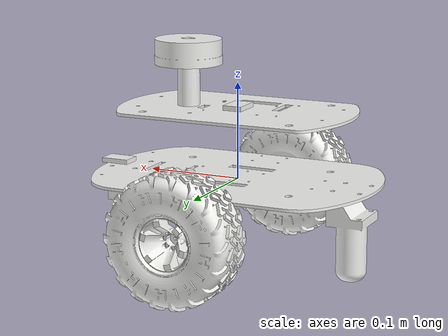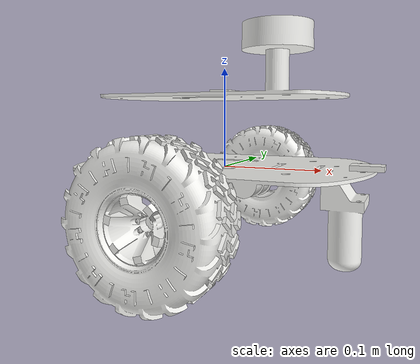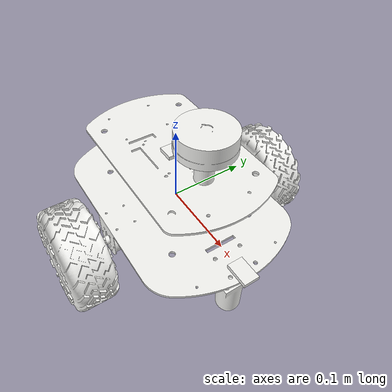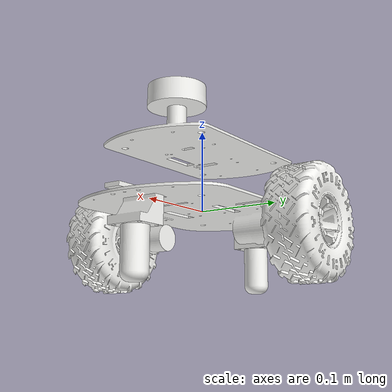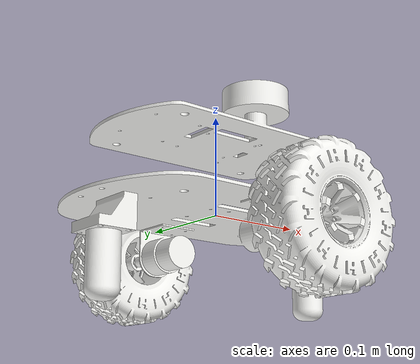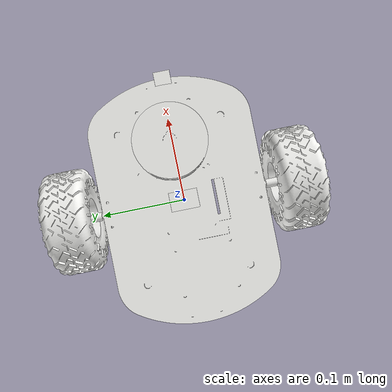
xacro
<?xml version="1.0"?>
<robot xmlns:xacro="http://www.ros.org/wiki/xacro" name="rep">

  <!-- Materials (shared across all assemblies) -->
  <material name="Acier">
    <color rgba="0.965 0.965 0.953 1.0"/>
  </material>

  <!-- Assembly includes -->
  <xacro:include filename="$(find rep_description)/urdf/assemblies/rep.urdf.xacro"/>

  <!-- Instantiate assemblies -->
  <xacro:rep prefix=""/>

</robot>

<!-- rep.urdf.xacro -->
<robot xmlns:xacro="http://www.ros.org/wiki/xacro" name="rep_macro">

  <xacro:macro name="rep" params="prefix">

    <!-- Links -->
    <link name="${prefix}base_link">
      <inertial>
        <origin xyz="0.002457 0.000319 0.017256" rpy="0 0 0"/>
        <mass value="2.915698"/>
        <inertia ixx="1.497968e-02" ixy="-1.987847e-06" ixz="-6.198532e-04"
                 iyy="1.704262e-02" iyz="-5.692531e-05" izz="2.223752e-02"/>
      </inertial>
      <visual>
        <origin xyz="0.000000 0.000000 0.000000" rpy="0 0 0"/>
        <geometry>
          <mesh filename="package://rep_description/meshes/rep/base_link.dae" scale="1 1 1"/>
        </geometry>
        <material name="Acier"/>
      </visual>
      <collision>
        <origin xyz="0.000000 0.000000 0.000000" rpy="0 0 0"/>
        <geometry>
          <mesh filename="package://rep_description/meshes/rep/base_link_collision.stl" scale="0.01 0.01 0.01"/>
        </geometry>
      </collision>
    </link>

    <link name="${prefix}caster_wheel1">
      <inertial>
        <origin xyz="-0.002156 0.000000 -0.019873" rpy="0 0 0"/>
        <mass value="0.605039"/>
        <inertia ixx="4.333806e-04" ixy="0.000000e+00" ixz="4.094011e-05"
                 iyy="4.187976e-04" iyz="8.924417e-20" izz="1.115116e-04"/>
      </inertial>
      <visual>
        <origin xyz="0.000000 0.000000 0.000000" rpy="0 0 0"/>
        <geometry>
          <mesh filename="package://rep_description/meshes/rep/caster_wheel1.dae" scale="1 1 1"/>
        </geometry>
        <material name="Acier"/>
      </visual>
      <collision>
        <origin xyz="0.000000 0.000000 0.000000" rpy="0 0 0"/>
        <geometry>
          <mesh filename="package://rep_description/meshes/rep/caster_wheel1_collision.stl" scale="0.01 0.01 0.01"/>
        </geometry>
      </collision>
    </link>

    <link name="${prefix}caster_wheel2">
      <inertial>
        <origin xyz="0.002156 -0.000000 -0.007373" rpy="0 0 0"/>
        <mass value="0.605039"/>
        <inertia ixx="4.333806e-04" ixy="-1.504024e-12" ixz="-4.094010e-05"
                 iyy="4.187976e-04" iyz="-1.272853e-11" izz="1.115116e-04"/>
      </inertial>
      <visual>
        <origin xyz="0.000000 0.000000 0.000000" rpy="0 0 0"/>
        <geometry>
          <mesh filename="package://rep_description/meshes/rep/caster_wheel2.dae" scale="1 1 1"/>
        </geometry>
        <material name="Acier"/>
      </visual>
      <collision>
        <origin xyz="0.000000 0.000000 0.000000" rpy="0 0 0"/>
        <geometry>
          <mesh filename="package://rep_description/meshes/rep/caster_wheel2_collision.stl" scale="0.01 0.01 0.01"/>
        </geometry>
      </collision>
    </link>

    <link name="${prefix}lidar">
      <inertial>
        <origin xyz="0.000000 0.000000 0.005494" rpy="0 0 0"/>
        <mass value="0.756885"/>
        <inertia ixx="2.679588e-04" ixy="1.784883e-19" ixz="-2.872641e-16"
                 iyy="2.679523e-04" iyz="-4.462208e-20" izz="4.518700e-04"/>
      </inertial>
      <visual>
        <origin xyz="0.000000 0.000000 0.000000" rpy="0 0 0"/>
        <geometry>
          <mesh filename="package://rep_description/meshes/rep/lidar.dae" scale="1 1 1"/>
        </geometry>
        <material name="Acier"/>
      </visual>
      <collision>
        <origin xyz="0.000000 0.000000 0.000000" rpy="0 0 0"/>
        <geometry>
          <mesh filename="package://rep_description/meshes/rep/lidar_collision.stl" scale="0.01 0.01 0.01"/>
        </geometry>
      </collision>
    </link>

    <link name="${prefix}imu">
      <inertial>
        <origin xyz="0.000000 0.000000 0.000000" rpy="0 0 0"/>
        <mass value="0.023550"/>
        <inertia ixx="1.815312e-06" ixy="0.000000e+00" ixz="0.000000e+00"
                 iyy="1.000000e-06" iyz="0.000000e+00" izz="2.551250e-06"/>
      </inertial>
      <visual>
        <origin xyz="0.000000 0.000000 0.000000" rpy="0 0 0"/>
        <geometry>
          <mesh filename="package://rep_description/meshes/rep/imu.dae" scale="1 1 1"/>
        </geometry>
        <material name="Acier"/>
      </visual>
      <collision>
        <origin xyz="0.000000 0.000000 0.000000" rpy="0 0 0"/>
        <geometry>
          <mesh filename="package://rep_description/meshes/rep/imu_collision.stl" scale="0.01 0.01 0.01"/>
        </geometry>
      </collision>
    </link>

    <link name="${prefix}mag">
      <inertial>
        <origin xyz="0.000000 0.000000 0.000000" rpy="0 0 0"/>
        <mass value="0.023550"/>
        <inertia ixx="1.000000e-06" ixy="0.000000e+00" ixz="0.000000e+00"
                 iyy="1.815312e-06" iyz="0.000000e+00" izz="2.551250e-06"/>
      </inertial>
      <visual>
        <origin xyz="0.000000 0.000000 0.000000" rpy="0 0 0"/>
        <geometry>
          <mesh filename="package://rep_description/meshes/rep/mag.dae" scale="1 1 1"/>
        </geometry>
        <material name="Acier"/>
      </visual>
      <collision>
        <origin xyz="0.000000 0.000000 0.000000" rpy="0 0 0"/>
        <geometry>
          <mesh filename="package://rep_description/meshes/rep/mag_collision.stl" scale="0.01 0.01 0.01"/>
        </geometry>
      </collision>
    </link>

    <link name="${prefix}left_wheel">
      <inertial>
        <origin xyz="0.000005 0.022147 0.000002" rpy="0 0 0"/>
        <mass value="1.021548"/>
        <inertia ixx="1.666424e-03" ixy="1.189099e-08" ixz="4.089806e-08"
                 iyy="2.596221e-03" iyz="-7.180651e-08" izz="1.666591e-03"/>
      </inertial>
      <visual>
        <origin xyz="-0.000411 0.019078 -0.001942" rpy="0 0 0"/>
        <geometry>
          <mesh filename="package://rep_description/meshes/rep/left_wheel.dae" scale="1 1 1"/>
        </geometry>
        <material name="Acier"/>
      </visual>
      <collision>
        <origin xyz="-0.000411 0.019078 -0.001942" rpy="0 0 0"/>
        <geometry>
          <mesh filename="package://rep_description/meshes/rep/left_wheel_collision.stl" scale="0.01 0.01 0.01"/>
        </geometry>
      </collision>
    </link>

    <link name="${prefix}right_wheel">
      <inertial>
        <origin xyz="-0.000005 -0.022147 0.000002" rpy="0 0 0"/>
        <mass value="1.021548"/>
        <inertia ixx="1.666424e-03" ixy="1.189099e-08" ixz="-4.089806e-08"
                 iyy="2.596221e-03" iyz="7.180651e-08" izz="1.666591e-03"/>
      </inertial>
      <visual>
        <origin xyz="0.000411 -0.019078 -0.001942" rpy="0 0 0"/>
        <geometry>
          <mesh filename="package://rep_description/meshes/rep/right_wheel.dae" scale="1 1 1"/>
        </geometry>
        <material name="Acier"/>
      </visual>
      <collision>
        <origin xyz="0.000411 -0.019078 -0.001942" rpy="0 0 0"/>
        <geometry>
          <mesh filename="package://rep_description/meshes/rep/right_wheel_collision.stl" scale="0.01 0.01 0.01"/>
        </geometry>
      </collision>
    </link>

    <!-- Joints (internal to assembly) -->
    <joint name="${prefix}caster_wheel1_joint" type="fixed">
      <parent link="${prefix}base_link"/>
      <child link="${prefix}caster_wheel1"/>
      <origin xyz="0.122500 0.000000 -0.023000" rpy="-0.000000 0.000000 -0.000000"/>
    </joint>

    <joint name="${prefix}caster_wheel2_joint" type="fixed">
      <parent link="${prefix}base_link"/>
      <child link="${prefix}caster_wheel2"/>
      <origin xyz="-0.125000 0.000000 -0.035500" rpy="0.000000 -0.000000 -0.000000"/>
    </joint>

    <joint name="${prefix}lidar_joint" type="fixed">
      <parent link="${prefix}base_link"/>
      <child link="${prefix}lidar"/>
      <origin xyz="0.055000 0.002000 0.123200" rpy="0.000000 -0.000000 -0.000000"/>
    </joint>

    <joint name="${prefix}imu_joint" type="fixed">
      <parent link="${prefix}base_link"/>
      <child link="${prefix}imu"/>
      <origin xyz="-0.000000 -0.000000 0.075500" rpy="-0.000000 0.000000 0.000000"/>
    </joint>

    <joint name="${prefix}mag_joint" type="fixed">
      <parent link="${prefix}base_link"/>
      <child link="${prefix}mag"/>
      <origin xyz="0.142000 -0.003000 0.005500" rpy="0.000000 -0.000000 -0.000000"/>
    </joint>

    <joint name="${prefix}left_wheel_joint" type="continuous">
      <parent link="${prefix}base_link"/>
      <child link="${prefix}left_wheel"/>
      <origin xyz="-0.000000 0.119500 -0.027000" rpy="0.000000 -0.000000 -0.000000"/>
      <axis xyz="-0.000000 1.000000 -0.000000"/>
      <limit effort="100.0" velocity="1.00"/>
    </joint>

    <joint name="${prefix}right_wheel_joint" type="continuous">
      <parent link="${prefix}base_link"/>
      <child link="${prefix}right_wheel"/>
      <origin xyz="-0.000000 -0.119500 -0.027000" rpy="-0.000000 -0.000000 -0.000000"/>
      <axis xyz="0.000000 -1.000000 -0.000000"/>
      <limit effort="100.0" velocity="1.00"/>
    </joint>

    <!-- ROS 2 control: generated generic system -->
    <ros2_control name="${prefix}rep_system" type="system">
      <hardware>
        <plugin>mock_components/GenericSystem</plugin>
        <param name="cmd_topic">sim/rep_system/cmd</param>
        <param name="state_topic">sim/rep_system/state</param>
      </hardware>

      <joint name="${prefix}left_wheel_joint">
        <command_interface name="position"/>
        <command_interface name="velocity"/>
        <state_interface name="position">
          <param name="initial_value">0.0</param>
        </state_interface>
        <state_interface name="velocity"/>
        <state_interface name="effort"/>
      </joint>
      <joint name="${prefix}right_wheel_joint">
        <command_interface name="position"/>
        <command_interface name="velocity"/>
        <state_interface name="position">
          <param name="initial_value">0.0</param>
        </state_interface>
        <state_interface name="velocity"/>
        <state_interface name="effort"/>
      </joint>
    </ros2_control>

  </xacro:macro>

</robot>
